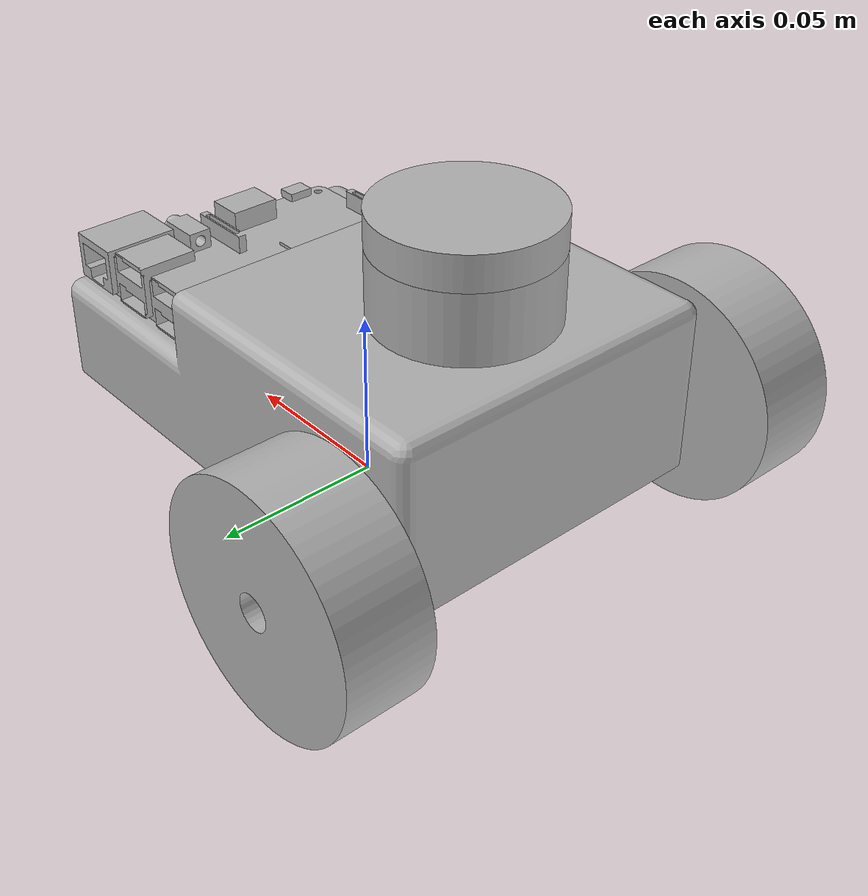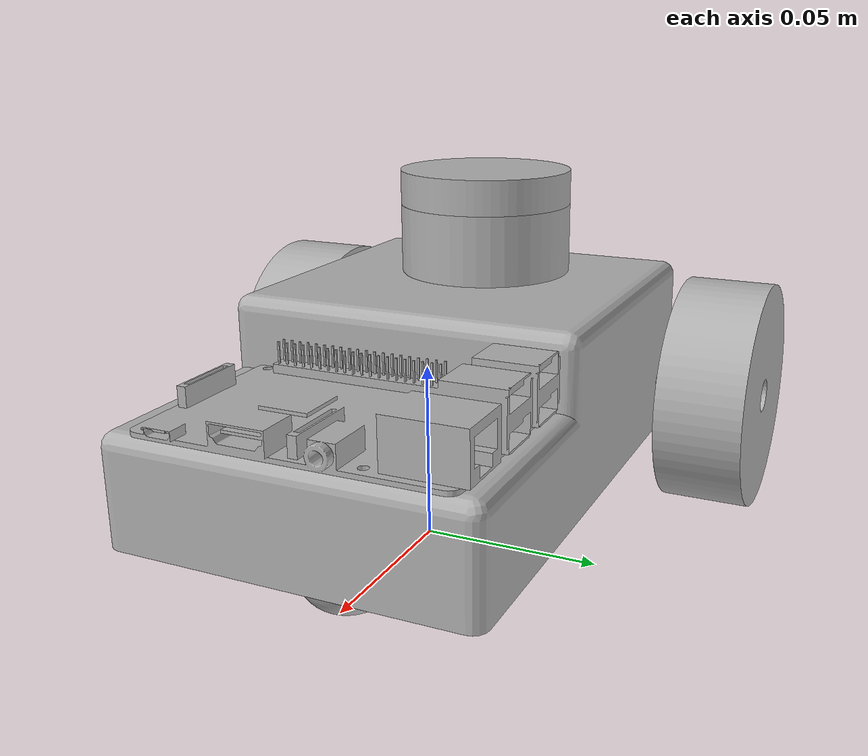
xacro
<?xml version="1.0" ?>
<robot name="New_bot" xmlns:xacro="http://www.ros.org/wiki/xacro">

<xacro:include filename="$(find New_bot_description)/urdf/materials.xacro" />
<xacro:include filename="$(find New_bot_description)/urdf/New_bot.trans" />
<xacro:include filename="$(find New_bot_description)/urdf/New_bot.gazebo" />
<link name="base_link">
  <inertial>
    <origin rpy="0 0 0" xyz="-0.010212346248804129 6.7302717670420285e-18 0.04397952899209392"/>
    <mass value="1.8243213497054398"/>
    <inertia ixx="0.001922" ixy="-0.0" ixz="0.000367" iyy="0.003508" iyz="0.0" izz="0.004481"/>
  </inertial>
  <visual>
    <origin rpy="0 0 0" xyz="0 0 0"/>
    <geometry>
      <mesh filename="package://New_bot_description/meshes/base_link.stl" scale="0.001 0.001 0.001"/>
    </geometry>
    <material name="silver"/>
  </visual>
  <collision>
    <origin rpy="0 0 0" xyz="0 0 0"/>
    <geometry>
      <mesh filename="package://New_bot_description/meshes/base_link.stl" scale="0.001 0.001 0.001"/>
    </geometry>
  </collision>
</link>

<link name="r_wheel_1">
  <inertial>
    <origin rpy="0 0 0" xyz="-9.089827363029102e-10 -0.012500000000000004 2.0861626315316073e-10"/>
    <mass value="0.12323427319098348"/>
    <inertia ixx="4.2e-05" ixy="0.0" ixz="-0.0" iyy="7.1e-05" iyz="-0.0" izz="4.2e-05"/>
  </inertial>
  <visual>
    <origin rpy="0 0 0" xyz="0.061 0.057 -0.0335"/>
    <geometry>
      <mesh filename="package://New_bot_description/meshes/r_wheel_1.stl" scale="0.001 0.001 0.001"/>
    </geometry>
    <material name="silver"/>
  </visual>
  <collision>
    <origin rpy="0 0 0" xyz="0.061 0.057 -0.0335"/>
    <geometry>
      <mesh filename="package://New_bot_description/meshes/r_wheel_1.stl" scale="0.001 0.001 0.001"/>
    </geometry>
  </collision>
</link>

<link name="l_wheel_1">
  <inertial>
    <origin rpy="0 0 0" xyz="-9.089827363029102e-10 0.012500000000000004 2.0861626315316073e-10"/>
    <mass value="0.12323427319098348"/>
    <inertia ixx="4.2e-05" ixy="0.0" ixz="-0.0" iyy="7.1e-05" iyz="0.0" izz="4.2e-05"/>
  </inertial>
  <visual>
    <origin rpy="0 0 0" xyz="0.061 -0.057 -0.0335"/>
    <geometry>
      <mesh filename="package://New_bot_description/meshes/l_wheel_1.stl" scale="0.001 0.001 0.001"/>
    </geometry>
    <material name="silver"/>
  </visual>
  <collision>
    <origin rpy="0 0 0" xyz="0.061 -0.057 -0.0335"/>
    <geometry>
      <mesh filename="package://New_bot_description/meshes/l_wheel_1.stl" scale="0.001 0.001 0.001"/>
    </geometry>
  </collision>
</link>

<link name="lidar_1">
  <inertial>
    <origin rpy="0 0 0" xyz="0.0 -7.237528875152536e-18 0.0049999999999999906"/>
    <mass value="0.1541343895667492"/>
    <inertia ixx="2.5e-05" ixy="-0.0" ixz="0.0" iyy="2.5e-05" iyz="0.0" izz="4.8e-05"/>
  </inertial>
  <visual>
    <origin rpy="0 0 0" xyz="0.04 -0.0 -0.0895"/>
    <geometry>
      <mesh filename="package://New_bot_description/meshes/lidar_1.stl" scale="0.001 0.001 0.001"/>
    </geometry>
    <material name="silver"/>
  </visual>
  <collision>
    <origin rpy="0 0 0" xyz="0.04 -0.0 -0.0895"/>
    <geometry>
      <mesh filename="package://New_bot_description/meshes/lidar_1.stl" scale="0.001 0.001 0.001"/>
    </geometry>
  </collision>
</link>

<link name="caster_1">
  <inertial>
    <origin rpy="0 0 0" xyz="-0.029999999999999985 0.0 -0.008390257768896393"/>
    <mass value="0.01338926411876868"/>
    <inertia ixx="1e-06" ixy="-0.0" ixz="0.0" iyy="1e-06" iyz="0.0" izz="1e-06"/>
  </inertial>
  <visual>
    <origin rpy="0 0 0" xyz="-0.075 -0.0 -0.0195"/>
    <geometry>
      <mesh filename="package://New_bot_description/meshes/caster_1.stl" scale="0.001 0.001 0.001"/>
    </geometry>
    <material name="silver"/>
  </visual>
  <collision>
    <origin rpy="0 0 0" xyz="-0.075 -0.0 -0.0195"/>
    <geometry>
      <mesh filename="package://New_bot_description/meshes/caster_1.stl" scale="0.001 0.001 0.001"/>
    </geometry>
  </collision>
</link>

<link name="rpi_1">
  <inertial>
    <origin rpy="0 0 0" xyz="-0.024145426051437997 0.016029779281400276 0.004888830680916917"/>
    <mass value="0.13472167579144476"/>
    <inertia ixx="8.3e-05" ixy="0.0" ixz="-0.0" iyy="4.1e-05" iyz="-9e-06" izz="0.000118"/>
  </inertial>
  <visual>
    <origin rpy="0 0 0" xyz="-0.071 -0.0 -0.0495"/>
    <geometry>
      <mesh filename="package://New_bot_description/meshes/rpi_1.stl" scale="0.001 0.001 0.001"/>
    </geometry>
    <material name="silver"/>
  </visual>
  <collision>
    <origin rpy="0 0 0" xyz="-0.071 -0.0 -0.0495"/>
    <geometry>
      <mesh filename="package://New_bot_description/meshes/rpi_1.stl" scale="0.001 0.001 0.001"/>
    </geometry>
  </collision>
</link>

<joint name="Rev1" type="continuous">
  <origin rpy="0 0 0" xyz="-0.061 -0.057 0.0335"/>
  <parent link="base_link"/>
  <child link="r_wheel_1"/>
  <axis xyz="0.0 1.0 0.0"/>
</joint>

<joint name="Rev2" type="continuous">
  <origin rpy="0 0 0" xyz="-0.061 0.057 0.0335"/>
  <parent link="base_link"/>
  <child link="l_wheel_1"/>
  <axis xyz="0.0 1.0 0.0"/>
</joint>

<joint name="Rigid3" type="fixed">
  <origin rpy="0 0 0" xyz="-0.04 0.0 0.0895"/>
  <parent link="base_link"/>
  <child link="lidar_1"/>
</joint>

<joint name="Rigid4" type="fixed">
  <origin rpy="0 0 0" xyz="0.075 0.0 0.0195"/>
  <parent link="base_link"/>
  <child link="caster_1"/>
</joint>

<joint name="Rigid5" type="fixed">
  <origin rpy="0 0 0" xyz="0.071 0.0 0.0495"/>
  <parent link="base_link"/>
  <child link="rpi_1"/>
</joint>

</robot>

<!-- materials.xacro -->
<robot name="New_bot" xmlns:xacro="http://www.ros.org/wiki/xacro" >

<material name="silver">
  <color rgba="0.700 0.700 0.700 1.000"/>
</material>

</robot>

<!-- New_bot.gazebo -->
<robot name="New_bot" xmlns:xacro="http://www.ros.org/wiki/xacro" >

<xacro:property name="body_color" value="Gazebo/Silver" />

<gazebo>
  <plugin filename="libgazebo_ros_control.so" name="control"/>
</gazebo>
<gazebo reference="base_link">
  <material>${body_color}</material>
  <mu1>0.2</mu1>
  <mu2>0.2</mu2>
  <selfCollide>true</selfCollide>
  <gravity>true</gravity>
</gazebo>

<gazebo reference="r_wheel_1">
  <material>${body_color}</material>
  <mu1>0.2</mu1>
  <mu2>0.2</mu2>
  <selfCollide>true</selfCollide>
</gazebo>

<gazebo reference="l_wheel_1">
  <material>${body_color}</material>
  <mu1>0.2</mu1>
  <mu2>0.2</mu2>
  <selfCollide>true</selfCollide>
</gazebo>

<gazebo reference="lidar_1">
  <material>${body_color}</material>
  <mu1>0.2</mu1>
  <mu2>0.2</mu2>
  <selfCollide>true</selfCollide>
</gazebo>

<gazebo reference="caster_1">
  <material>${body_color}</material>
  <mu1>0.2</mu1>
  <mu2>0.2</mu2>
  <selfCollide>true</selfCollide>
</gazebo>

<gazebo reference="rpi_1">
  <material>${body_color}</material>
  <mu1>0.2</mu1>
  <mu2>0.2</mu2>
  <selfCollide>true</selfCollide>
</gazebo>

<gazebo>
  <plugin name="differential_drive_controller" filename="libgazebo_ros_diff_drive.so">

    <!-- Plugin update rate in Hz -->
    <updateRate>$10</updateRate>

    <!-- Name of left joint, defaults to `left_joint` -->
    <leftJoint>Rev2</leftJoint>

    <!-- Name of right joint, defaults to `right_joint` -->
    <rightJoint>Rev1</rightJoint>

    <!-- The distance from the center of one wheel to the other, in meters, defaults to 0.34 m -->
    <wheelSeparation>0.5380</wheelSeparation>

    <!-- Diameter of the wheels, in meters, defaults to 0.15 m -->
    <wheelDiameter>0.2410</wheelDiameter>

    <!-- Wheel acceleration, in rad/s^2, defaults to 0.0 rad/s^2 -->
    <wheelAcceleration>1.0</wheelAcceleration>

    <!-- Maximum torque which the wheels can produce, in Nm, defaults to 5 Nm -->
    <wheelTorque>20</wheelTorque>

    <!-- Topic to receive geometry_msgs/Twist message commands, defaults to `cmd_vel` -->
    <commandTopic>cmd_vel</commandTopic>

    <!-- Topic to publish nav_msgs/Odometry messages, defaults to `odom` -->
    <odometryTopic>odom</odometryTopic>

    <!-- Odometry frame, defaults to `odom` -->
    <odometryFrame>odom</odometryFrame>

    <!-- Robot frame to calculate odometry from, defaults to `base_footprint` -->
    <robotBaseFrame>base_link</robotBaseFrame>

    <!-- Odometry source, 0 for ENCODER, 1 for WORLD, defaults to WORLD -->
    <odometrySource>1</odometrySource>

    <!-- Set to true to publish transforms for the wheel links, defaults to false -->
    <publishWheelTF>true</publishWheelTF>

    <!-- Set to true to publish transforms for the odometry, defaults to true -->
    <publishOdom>true</publishOdom>

    <!-- Set to true to publish sensor_msgs/JointState on /joint_states for the wheel joints, defaults to false -->
    <publishWheelJointState>true</publishWheelJointState>

    <!-- Set to true to swap right and left wheels, defaults to true -->
    <legacyMode>false</legacyMode>
  </plugin>
</gazebo>

<gazebo reference="lidar_1">
  <sensor type="ray" name="head_hokuyo_sensor">
    <pose>0 0 0 0 0 0</pose>
    <visualize>false</visualize>
    <update_rate>40</update_rate>
    <ray>
      <scan>
        <horizontal>
          <samples>720</samples>
          <resolution>1</resolution>
          <min_angle>-3.14</min_angle>
          <max_angle>3.14</max_angle>
        </horizontal>
      </scan>
      <range>
        <min>0.10</min>
        <max>30.0</max>
        <resolution>0.01</resolution>
      </range>
      <noise>
        <type>gaussian</type>
        <mean>0.0</mean>
        <stddev>0.01</stddev>
      </noise>
    </ray>
    <plugin name="gazebo_ros_head_hokuyo_controller" filename="libgazebo_ros_laser.so">
      <topicName>/scan</topicName>
      <frameName>lidar_1</frameName>
    </plugin>
  </sensor>
</gazebo>

</robot>
